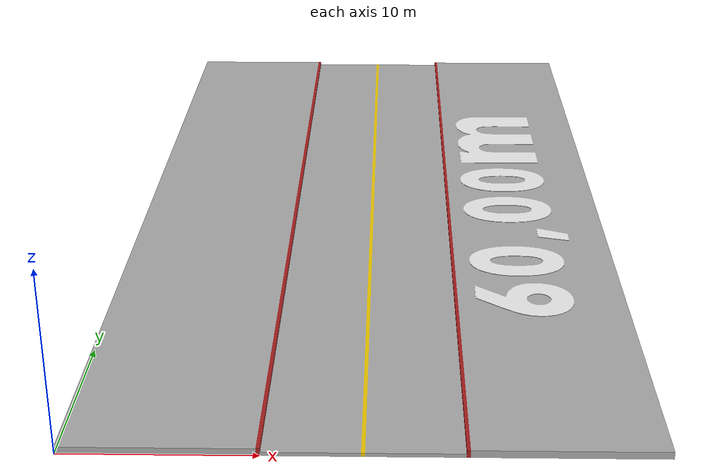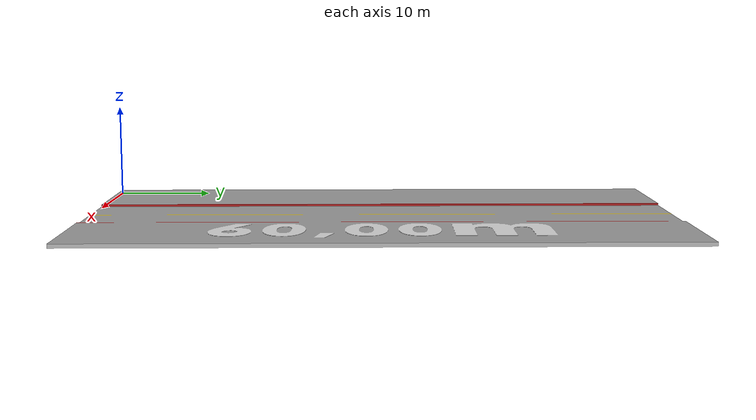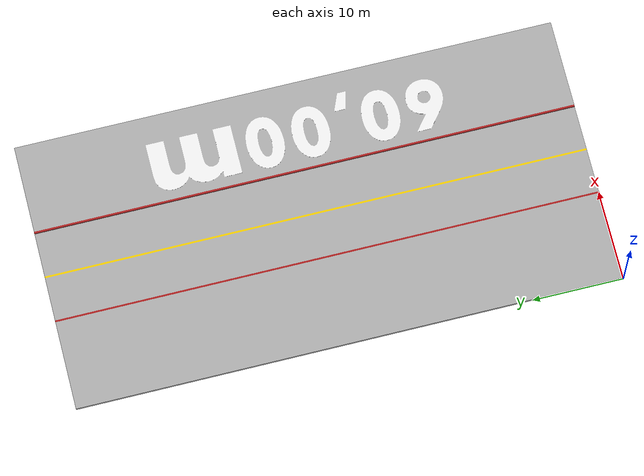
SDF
<?xml version="1.0" ?>
<sdf version="1.5">
   <model name="rectasinpeaton60,00m">
      <static>true</static>
      <link name="rectasinpeaton60,00m_link">
         <collision name="rectasinpeaton60,00m_collision">
            <pose>15 30 0.10 0 0 0</pose>
            <geometry>
               <box>
                  <size>30 60 0.20</size>
               </box>
            </geometry>
         </collision>
         <visual name="rectasinpeaton60,00m_mesh">
            <cast_shadows>false</cast_shadows>
            <geometry>
               <mesh>
                  <uri>model://rectasinpeaton60,00m/meshes/rectasinpeaton60,00m.dae</uri>
               </mesh>
            </geometry>
         </visual>
      </link>
   </model>
</sdf>
